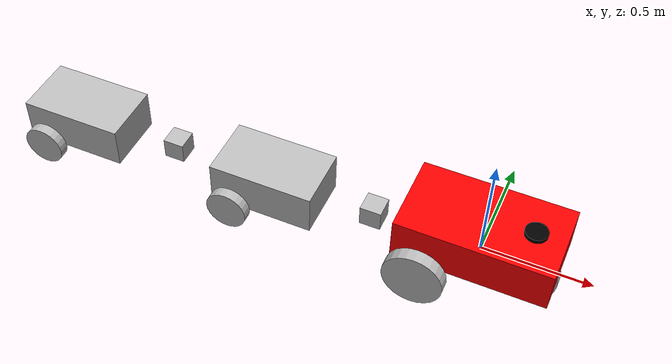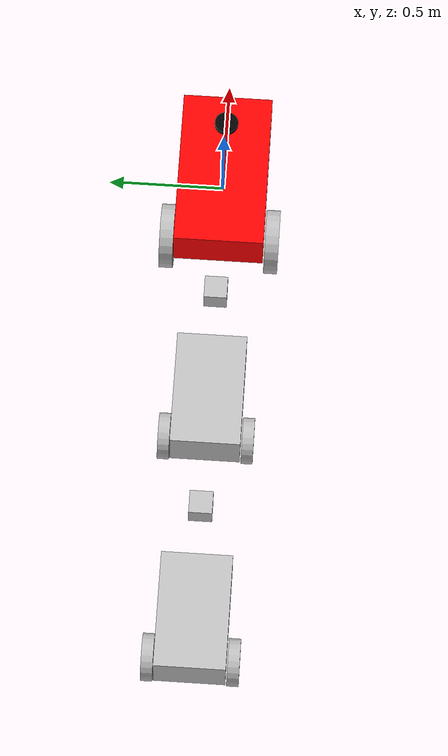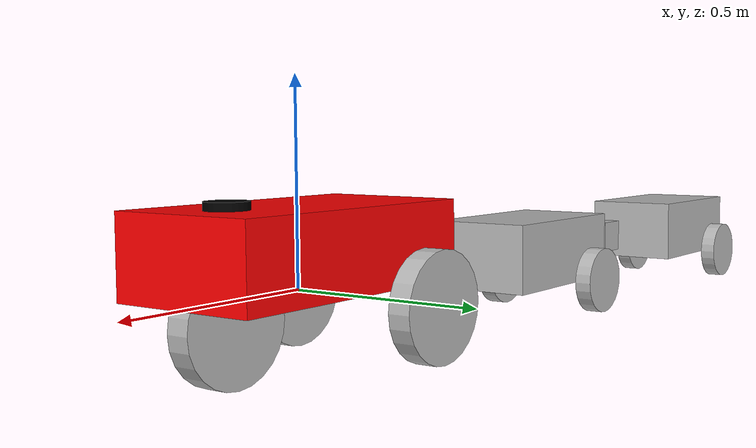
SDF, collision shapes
<?xml version="1.0" ?>
<!-- This file hosts the sdf description for the robot and the two trailers it is towing through hitch joints-->
<!-- The trailers and hitches are only part of sdf (Gazebo) as we did not require them in urdf (ROS2) after shift in our project structure -->
<sdf version="1.5">
  <model name="basic_mobile_bot">
  <static>false</static>

  <!-- ****************** ROBOT BASE FOOTPRINT ***************************  -->
  <pose>0.0 0.0 0.0 0.0 0.0 0.0</pose>
  <link name="base_footprint"/>

  <!-- ********************** ROBOT BASE *********************************  -->
  <link name="base_link">

    <collision name="base_collision">
      <pose>0 0 0.1 0 0 0</pose>
      <geometry>
        <box>
          <size>0.70 0.39 0.20</size>
        </box>
      </geometry>
    </collision>

    <visual name="base_visual">
      <pose>0 0 -0.05 1.5707963267949 0 3.141592654</pose>
      <geometry>
        <mesh>
          <uri>model://basic_mobile_bot_description/meshes/robot_base.stl</uri>
          <scale>1.0 1.0 1.0</scale>
        </mesh>
      </geometry>
      <material>
        <ambient>1.0 0.0 0.0 1.0</ambient>
        <diffuse>1.0 0.0 0.0 1.0</diffuse>
        <specular>0.0 0.0 0.0 1.0</specular>
        <emissive>0.0 0.0 0.0 1.0</emissive>
      </material>
    </visual>
  </link>

  <!-- ********************** HITCH 1 *********************************  -->
  <link name="hitch1_link">
    <pose>-0.5 0 0 0 0 0</pose>

    <collision name="hitch1_collision">
      <geometry>
        <box>
          <size>0.1 0.1 0.1</size>
        </box>
      </geometry>
    </collision>

    <visual name="hitch1_visual">
      <geometry>
        <box>
          <size>0.1 0.1 0.1</size>
        </box>
      </geometry>
    </visual>
  </link>

  <!-- ********************** CART 1 *********************************  -->
  <link name="cart1_base_link">
    <pose>-1.0 0 0 0 0 0</pose>

    <collision name="cart1_base_collision">
      <geometry>
        <box>
          <size>0.5 0.3 0.2</size>
        </box>
      </geometry>
    </collision>

    <visual name="cart1_base_visual">
      <geometry>
        <box>
          <size>0.5 0.3 0.2</size>
        </box>
      </geometry>
    </visual>
  </link>

  <link name="cart1_wheel_left">
    <pose>-1.15 0.18 -0.1 0 1.570796 1.570796</pose>
    <collision name="cart1_wheel_left_collision">
      <geometry>
        <cylinder>
          <radius>0.1</radius>
          <length>0.05</length>
        </cylinder>
      </geometry>
    </collision>
    <visual name="cart1_wheel_left_visual">
      <geometry>
        <cylinder>
          <radius>0.1</radius>
          <length>0.05</length>
        </cylinder>
      </geometry>
    </visual>
  </link>

  <link name="cart1_wheel_right">
    <pose>-1.15 -0.18 -0.1 0 1.570796 1.570796</pose>
    <collision name="cart1_wheel_right_collision">
      <geometry>
        <cylinder>
          <radius>0.1</radius>
          <length>0.05</length>
        </cylinder>
      </geometry>
    </collision>
    <visual name="cart1_wheel_right_visual">
      <geometry>
        <cylinder>
          <radius>0.1</radius>
          <length>0.05</length>
        </cylinder>
      </geometry>
    </visual>
  </link>

  <!-- ********************** HITCH 2 *********************************  -->
  <link name="hitch2_link">
    <pose>-1.5 0 0 0 0 0</pose>

    <collision name="hitch2_collision">
      <geometry>
        <box>
          <size>0.1 0.1 0.1</size>
        </box>
      </geometry>
    </collision>

    <visual name="hitch2_visual">
      <geometry>
        <box>
          <size>0.1 0.1 0.1</size>
        </box>
      </geometry>
    </visual>
  </link>

  <!-- ********************** CART 2 *********************************  -->
  <link name="cart2_base_link">
    <pose>-2.0 0 0 0 0 0</pose>

    <collision name="cart2_base_collision">
      <geometry>
        <box>
          <size>0.5 0.3 0.2</size>
        </box>
      </geometry>
    </collision>

    <visual name="cart2_base_visual">
      <geometry>
        <box>
          <size>0.5 0.3 0.2</size>
        </box>
      </geometry>
    </visual>
  </link>

  <link name="cart2_wheel_left">
    <pose>-2.15 0.18 -0.1 0 1.570796 1.570796</pose>
    <collision name="cart2_wheel_left_collision">
      <geometry>
        <cylinder>
          <radius>0.1</radius>
          <length>0.05</length>
        </cylinder>
      </geometry>
    </collision>
    <visual name="cart2_wheel_left_visual">
      <geometry>
        <cylinder>
          <radius>0.1</radius>
          <length>0.05</length>
        </cylinder>
      </geometry>
    </visual>
  </link>

  <link name="cart2_wheel_right">
    <pose>-2.15 -0.18 -0.1 0 1.570796 1.570796</pose>
    <collision name="cart1_wheel_right_collision">
      <geometry>
        <cylinder>
          <radius>0.1</radius>
          <length>0.05</length>
        </cylinder>
      </geometry>
    </collision>
    <visual name="cart2_wheel_right_visual">
      <geometry>
        <cylinder>
          <radius>0.1</radius>
          <length>0.05</length>
        </cylinder>
      </geometry>
    </visual>
  </link>

  <!-- *********************** IMU SENSOR SETUP **************************  -->
  <link name="imu_link">
    <gravity>true</gravity>
    <sensor name="bmb_imu" type="imu">
      <always_on>true</always_on>
      <update_rate>100</update_rate>
      <visualize>true</visualize>
      <imu>
        <orientation>
          <x>
            <noise type="gaussian">
              <mean>0.0</mean>
              <stddev>2e-3</stddev>
            </noise>
          </x>
          <y>
            <noise type="gaussian">
              <mean>0.0</mean>
              <stddev>2e-3</stddev>
            </noise>
          </y>
          <z>
            <noise type="gaussian">
              <mean>0.0</mean>
              <stddev>2e-3</stddev>
            </noise>
          </z>
        </orientation>
        <angular_velocity>
          <x>
            <noise type="gaussian">
              <mean>0.0</mean>
              <stddev>2e-4</stddev>
            </noise>
          </x>
          <y>
            <noise type="gaussian">
              <mean>0.0</mean>
              <stddev>2e-4</stddev>
            </noise>
          </y>
          <z>
            <noise type="gaussian">
              <mean>0.0</mean>
              <stddev>2e-4</stddev>
            </noise>
          </z>
        </angular_velocity>
        <linear_acceleration>
          <x>
            <noise type="gaussian">
              <mean>0.0</mean>
              <stddev>1.7e-2</stddev>
            </noise>
          </x>
          <y>
            <noise type="gaussian">
              <mean>0.0</mean>
              <stddev>1.7e-2</stddev>
            </noise>
          </y>
          <z>
            <noise type="gaussian">
              <mean>0.0</mean>
              <stddev>1.7e-2</stddev>
            </noise>
          </z>
        </linear_acceleration>
      </imu>
      <plugin name="basic_mobile_bot_imu" filename="libgazebo_ros_imu_sensor.so">
        <initial_orientation_as_reference>false</initial_orientation_as_reference>
        <frame_name>imu_link</frame_name>
        <ros>
          <namespace>/imu</namespace>
          <remapping>~/out:=data</remapping>
        </ros>
      </plugin>
    </sensor>
  </link>

  <!-- *********************** GPS SETUP *********************************  -->
  <link name="gps_link">
    <sensor name="bmb_gps" type="gps">
      <always_on>true</always_on>
      <update_rate>10.0</update_rate>
      <gps>
        <position_sensing>
          <horizontal>
            <noise type="gaussian">
              <mean>0.0</mean>
              <stddev>1e-2</stddev>
            </noise>
          </horizontal>
          <vertical>
            <noise type="gaussian">
              <mean>0.0</mean>
              <stddev>1</stddev>
            </noise>
          </vertical>
        </position_sensing>
      </gps>
      <plugin name="basic_mobile_bot_gps" filename="libgazebo_ros_gps_sensor.so">
        <ros>
          <remapping>~/out:=gps/fix</remapping>
        </ros>
      </plugin>
    </sensor>
  </link>

  <!-- ****************************** LIDAR *****************************    -->
  <link name="lidar_link">
    <inertial>
      <pose>0.215 0 0.8 0 0 0</pose>
      <inertia>
        <ixx>0.001</ixx>
        <ixy>0.000</ixy>
        <ixz>0.000</ixz>
        <iyy>0.001</iyy>
        <iyz>0.000</iyz>
        <izz>0.001</izz>
      </inertia>
      <mass>0.114</mass>
    </inertial>

    <collision name="lidar_collision">
      <pose>0.215 0 0.13 0 0 0</pose>
      <geometry>
        <cylinder>
          <radius>0.0508</radius>
          <length>0.18</length>
        </cylinder>
      </geometry>
    </collision>

    <visual name="lidar_visual">
      <pose>0.215 0 0.13 0 0 0</pose>
      <geometry>
        <cylinder>
          <radius>0.0508</radius>
          <length>0.18</length>
        </cylinder>
      </geometry>
      <material>
        <ambient>0.0 0.0 0.0 1.0</ambient>
        <diffuse>0.0 0.0 0.0 1.0</diffuse>
        <specular>0.0 0.0 0.0 1.0</specular>
        <emissive>0.0 0.0 0.0 1.0</emissive>
      </material>
    </visual>

    <sensor name="lidar" type="ray">
      <pose>0.215 0 0.215 0 0 0</pose>
      <always_on>true</always_on>
      <visualize>true</visualize>
      <update_rate>5</update_rate>
      <ray>
        <scan>
          <horizontal>
            <samples>120</samples>
            <resolution>1.000000</resolution>
            <min_angle>0</min_angle>
            <max_angle>6.283185</max_angle>
          </horizontal>
        </scan>
        <range>
          <min>0.12</min>
          <max>3.5</max>
          <resolution>0.015</resolution>
        </range>
        <noise>
          <type>gaussian</type>
          <mean>0.0</mean>
          <stddev>0.01</stddev>
        </noise>
      </ray>
      <plugin name="scan" filename="libgazebo_ros_ray_sensor.so">
        <ros>
          <remapping>~/out:=scan</remapping>
        </ros>
        <output_type>sensor_msgs/LaserScan</output_type>
        <frame_name>lidar_link</frame_name>
      </plugin>
    </sensor>
  </link>

  <!-- *********************** DRIVE WHEELS ******************************  -->
  <link name="rear_axle_link">
    <pose>-0.221 0 -0.05 0 1.570796 1.570796</pose>
  </link>

  <link name="drivewhl_l_link">
    <pose>-0.221 0.23 -0.05 0 1.570796 1.570796</pose>

    <collision name="drivewhl_l_collision">
      <geometry>
        <cylinder>
          <radius>0.14</radius>
          <length>0.06</length>
        </cylinder>
      </geometry>
    </collision>

    <visual name="drivewhl_l_visual">
      <geometry>
        <cylinder>
          <radius>0.14</radius>
          <length>0.06</length>
        </cylinder>
      </geometry>
    </visual>
  </link>

  <link name="drivewhl_r_link">
    <pose>-0.221 -0.23 -0.05 0 1.570796 1.570796</pose>

    <collision name="drivewhl_r_collision">
      <geometry>
        <cylinder>
          <radius>0.14</radius>
          <length>0.06</length>
        </cylinder>
      </geometry>
    </collision>

    <visual name="drivewhl_r_visual">
      <geometry>
        <cylinder>
          <radius>0.14</radius>
          <length>0.06</length>
        </cylinder>
      </geometry>
    </visual>
  </link>

  <!-- *********************** STEERING WHEEL ******************************  -->
  <link name="steering_link">
    <pose>0.217 0 -0.05 0 1.570796 1.570796</pose>
  </link>

  <link name="steering_wheel_link">
    <pose>0.217 0 -0.05 0 1.570796 1.570796</pose>
    <geometry>
      <cylinder>
        <radius>0.14</radius>
        <length>0.06</length>
      </cylinder>
    </geometry>
  </link>

  <link name="front_steering_wheel_link">
    <pose>0.217 0 -0.05 0 1.570796 1.570796</pose>

    <collision name="front_steering_wheel_collision">
      <geometry>
        <cylinder>
          <radius>0.14</radius>
          <length>0.06</length>
        </cylinder>
      </geometry>
    </collision>

    <visual name="front_steering_wheel_visual">
      <geometry>
        <cylinder>
          <radius>0.14</radius>
          <length>0.06</length>
        </cylinder>
      </geometry>
    </visual>
  </link>

  <!-- ************************ JOINTS ***********************************  -->
  <!-- Pose of the joint is the same as the child link frame -->
  <!-- Axis is the axis of rotation relative to the child link frame -->

  <joint name="base_joint" type="fixed">
    <parent>base_footprint</parent>
    <child>base_link</child>
    <pose>0 0 0 0 0 0</pose>
  </joint>

  <joint name="rear_axle_joint" type="fixed">
   <parent>base_link</parent>
   <child>rear_axle_link</child>
   <pose>0 0 0 0 0 0</pose>
  </joint>

  <joint name="drivewhl_l_joint" type="revolute">
    <parent>rear_axle_link</parent>
    <child>drivewhl_l_link</child>
    <pose>0 0 0 0 0 0</pose>
    <axis>
      <xyz>0 0 1</xyz>
    </axis>
  </joint>

  <joint name="drivewhl_r_joint" type="revolute">
    <parent>rear_axle_link</parent>
    <child>drivewhl_r_link</child>
    <pose>0 0 0 0 0 0</pose>
    <axis>
      <xyz>0 0 1</xyz>
    </axis>
  </joint>

  <joint name="steering_joint" type="fixed">
   <parent>base_link</parent>
   <child>steering_link</child>
   <pose>0 0 0 0 0 0</pose>
  </joint>

  <joint name="steering_wheel_joint" type="revolute">
   <parent>steering_link</parent>
   <child>steering_wheel_link</child>
   <pose>0 0 0 0 0 0</pose>
   <axis>
     <xyz>-1 0 0</xyz>
    <limit>
      <lower>-1.047</lower>
      <upper>1.047</upper>
      <effort>10</effort>
      <velocity>1.0</velocity>
    </limit>
    <dynamics>
      <damping>1.0</damping>
    </dynamics>
   </axis>
  </joint>

  <joint name="front_steering_wheel_joint" type="revolute">
   <parent>steering_wheel_link</parent>
   <child>front_steering_wheel_link</child>
   <pose>0 0 0 0 0 0</pose>
   <axis>
     <xyz>0 0 1</xyz>
   </axis>
  </joint>

  <joint name="hitch1_joint" type="revolute">
    <parent>base_link</parent>
    <child>hitch1_link</child>
    <pose>0 0 0 0 0 0</pose>
    <axis>
      <xyz>0 0 1</xyz>
      <limit>
        <lower>-1.57</lower>
        <upper>1.57</upper>
        <effort>10</effort>
        <velocity>1.0</velocity>
      </limit>
    </axis>
  </joint>

  <joint name="cart1_joint" type="fixed">
    <parent>hitch1_link</parent>
    <child>cart1_base_link</child>
    <pose>0 0 0 0 0 0</pose>
  </joint>

  <joint name="cart1_wheel_left_joint" type="revolute">
    <parent>cart1_base_link</parent>
    <child>cart1_wheel_left</child>
    <axis>
      <xyz>0 0 1</xyz>
    </axis>
  </joint>

  <joint name="cart1_wheel_right_joint" type="revolute">
    <parent>cart1_base_link</parent>
    <child>cart1_wheel_right</child>
    <axis>
      <xyz>0 0 1</xyz>
    </axis>
  </joint>

  <joint name="hitch2_joint" type="revolute">
    <parent>cart1_base_link</parent>
    <child>hitch2_link</child>
    <pose>0 0 0 0 0 0</pose>
    <axis>
      <xyz>0 0 1</xyz>
      <limit>
        <lower>-1.57</lower>
        <upper>1.57</upper>
        <effort>10</effort>
        <velocity>1.0</velocity>
      </limit>
    </axis>
  </joint>

  <joint name="cart2_joint" type="fixed">
    <parent>hitch2_link</parent>
    <child>cart2_base_link</child>
    <pose>0 0 0 0 0 0</pose>
  </joint>

  <joint name="cart2_wheel_left_joint" type="revolute">
    <parent>cart2_base_link</parent>
    <child>cart2_wheel_left</child>
    <axis>
      <xyz>0 0 1</xyz>
    </axis>
  </joint>

  <joint name="cart2_wheel_right_joint" type="revolute">
    <parent>cart2_base_link</parent>
    <child>cart2_wheel_right</child>
    <axis>
      <xyz>0 0 1</xyz>
    </axis>
  </joint>

  <joint name="imu_joint" type="fixed">
   <parent>base_link</parent>
   <child>imu_link</child>
   <pose>0 0 0 0 0 0</pose>
  </joint>

  <joint name="gps_joint" type="fixed">
    <parent>base_link</parent>
    <child>gps_link</child>
    <pose>0 0 0 0 0 0</pose>
  </joint>

  <joint name="lidar_joint" type="fixed">
    <parent>base_link</parent>
    <child>lidar_link</child>
    <pose>0 0 0 0 0 0</pose>
  </joint>

  <!-- *********************** WHEEL ODOMETRY ***************************    -->
  <plugin name="gazebo_ros_ackermann_drive" filename="libgazebo_ros_ackermann_drive_debug.so">
    <ros>
      <namespace></namespace>
      <remapping>cmd_vel:=cmd_vel</remapping>
      <remapping>odom:=wheel/odometry</remapping>
    </ros>

    <rear_left_joint>drivewhl_l_joint</rear_left_joint>
    <rear_right_joint>drivewhl_r_joint</rear_right_joint>
    <left_steering_joint>steering_wheel_joint</left_steering_joint>
    <right_steering_joint>steering_wheel_joint</right_steering_joint>
    <front_right_joint>front_steering_wheel_joint</front_right_joint>
    <front_left_joint>front_steering_wheel_joint</front_left_joint>

    <update_rate>100.0</update_rate>

    <!-- Max absolute steer angle for tyre in radians-->
    <!-- Any cmd_vel angular z greater than this would be capped -->
    <max_steer>0.6458</max_steer>

    <!-- Max absolute steering angle of steering wheel -->
    <max_steering_angle>7.85</max_steering_angle>

    <!-- Max absolute linear speed in m/s -->
    <max_speed>20</max_speed>

    <!-- PID tuning -->
    <left_steering_pid_gain>1500 0 1</left_steering_pid_gain>
    <left_steering_i_range>0 0</left_steering_i_range>
    <right_steering_pid_gain>1500 0 1</right_steering_pid_gain>
    <right_steering_i_range>0 0</right_steering_i_range>
    <linear_velocity_pid_gain>1000 0 1</linear_velocity_pid_gain>
    <linear_velocity_i_range>0 0</linear_velocity_i_range>

    <!-- output -->
    <publish_odom>true</publish_odom>
    <publish_odom_tf>false</publish_odom_tf>
    <publish_wheel_tf>false</publish_wheel_tf>
    <publish_distance>true</publish_distance>

    <odometry_frame>odom</odometry_frame>
    <robot_base_frame>base_link</robot_base_frame>

    <!-- just imitated the params of tricycle plugin. not sure if the following two params exist in this plugin -->
  </plugin>

 <!-- *********************** JOINT STATE PUBLISHER *********************   -->

  <plugin name="basic_mobile_bot_joint_state" filename="libgazebo_ros_joint_state_publisher.so">
    <ros>
      <remapping>~/out:=joint_states</remapping>
    </ros>
    <update_rate>30</update_rate>
    <joint_name>rear_axle_joint</joint_name>
    <joint_name>drivewhl_l_joint</joint_name>
    <joint_name>drivewhl_r_joint</joint_name>
    <joint_name>steering_joint</joint_name>
    <joint_name>steering_wheel_joint</joint_name>
    <joint_name>front_steering_wheel_joint</joint_name>
  </plugin>

  </model>
</sdf>
